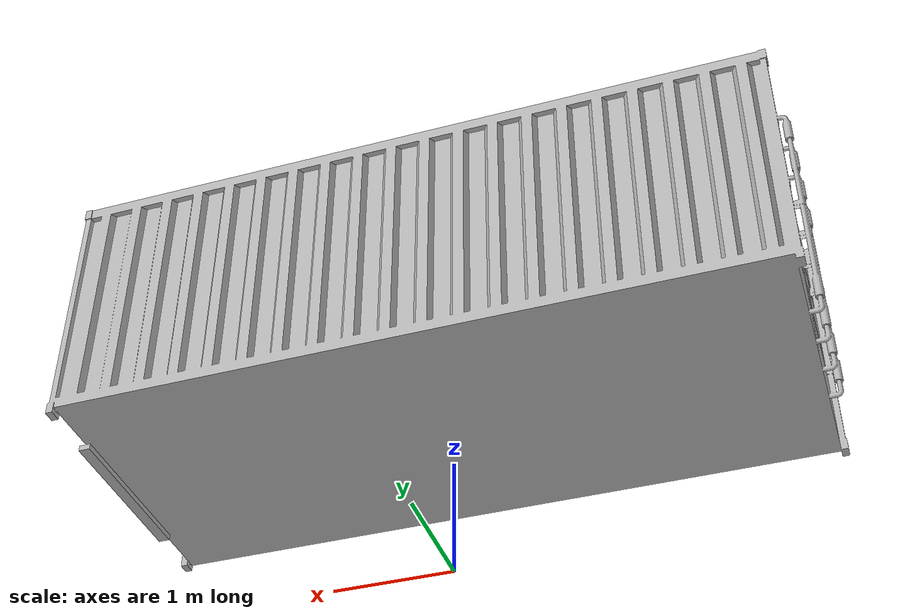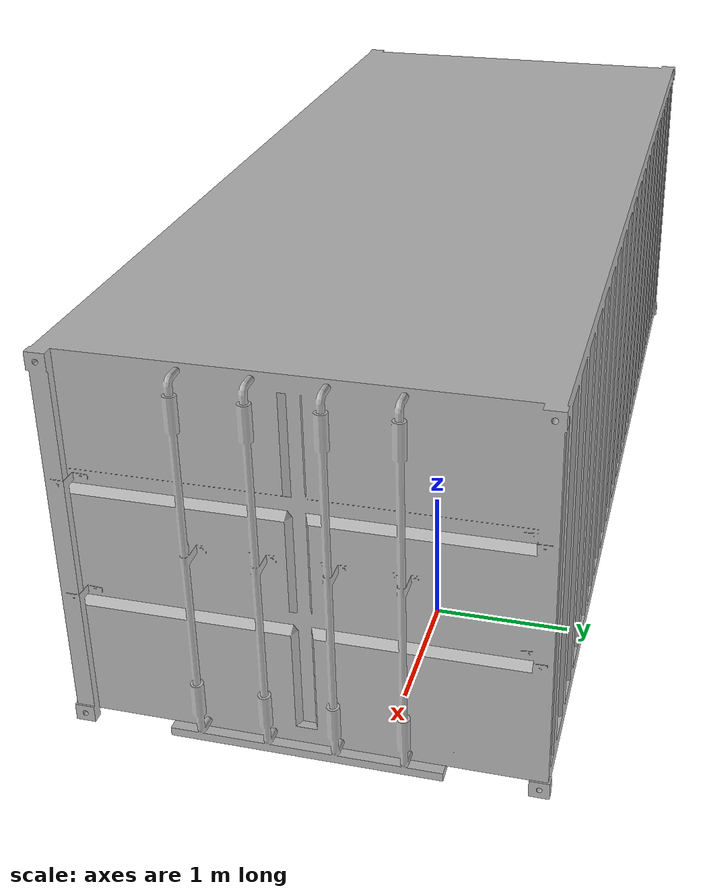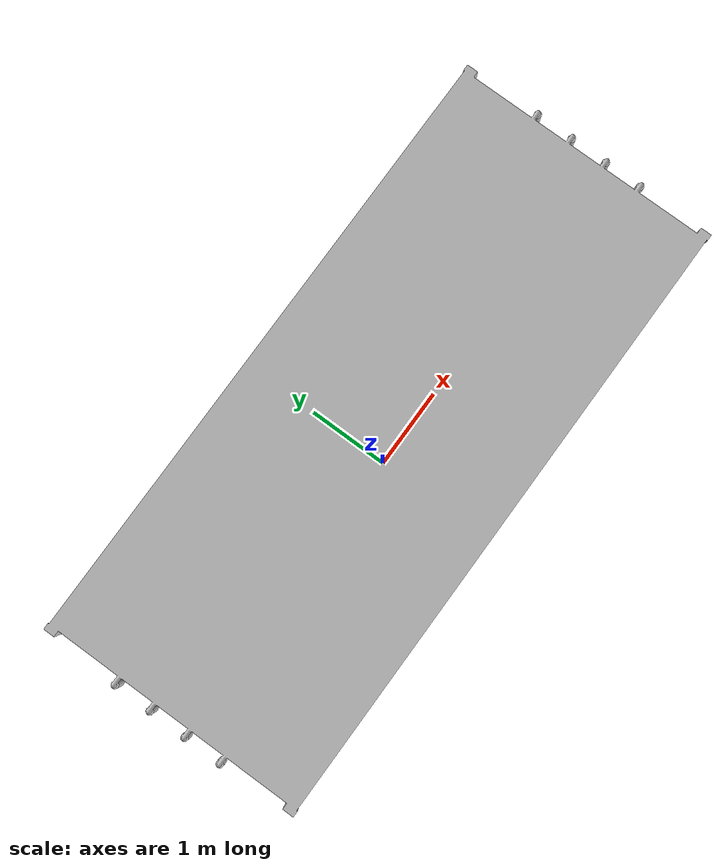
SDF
<sdf version="1.11">
  <model name="container1">
    <static>false</static>

    <link name="base_link">
      <pose>0 0 1.295 0 0 0</pose> <!-- half of height to float above origin -->

      <inertial>
        <mass>2200</mass> <!-- realistic container weight when empty -->
        <inertia>
          <ixx>1000</ixx>
          <iyy>1000</iyy>
          <izz>1000</izz>
          <ixy>0</ixy>
          <ixz>0</ixz>
          <iyz>0</iyz>
        </inertia>
      </inertial>

      <collision name="collision">
        <geometry>
              <mesh>
                <uri>model://newnames/container1/meshes/Cargo_Container_Mesh.dae</uri>
              </mesh>
            </geometry>
            <surface>
              <contact>
                <collide_without_contact>true</collide_without_contact>
              </contact>
            </surface>
      </collision>
        <visual name="visual">
         <geometry>
          <mesh>
            <uri>model://newnames/container1/meshes/Cargo_Container_Mesh.dae</uri>
          </mesh>
        </geometry>

      </visual>
    </link>

    <plugin name="vrx::Surface" filename="libSurface.so">
      <link_name>base_link</link_name>
      <hull_length>6.06</hull_length>
      <hull_radius>0.5</hull_radius>
      <fluid_level>0</fluid_level>
      <points>
        <point>2.9 1.2 0</point>
        <point>-2.9 1.2 0</point>
        <point>2.9 -1.2 0</point>
        <point>-2.9 -1.2 0</point>
      </points>
      <wavefield>
        <topic>/vrx/wavefield/parameters</topic>
      </wavefield>
    </plugin>

    <plugin name="vrx::SimpleHydrodynamics" filename="libSimpleHydrodynamics.so">
      <link_name>base_link</link_name>
      <xDotU>0.0</xDotU>
      <yDotV>0.0</yDotV>
      <nDotR>0.0</nDotR>
      <xU>300.0</xU>
      <xUU>500.0</xUU>
      <yV>300.0</yV>
      <yVV>400.0</yVV>
      <zW>2000.0</zW> <!-- large value to simulate strong vertical resistance (buoyancy) -->
      <kP>1000.0</kP>
      <kPP>1200.0</kPP>
      <mQ>1000.0</mQ>
      <mQQ>1200.0</mQQ>
      <nR>1000.0</nR>
      <nRR>1200.0</nRR>
    </plugin>
    <plugin filename="gz-sim-odometry-publisher-system"
            name="gz::sim::systems::OdometryPublisher">
      <odom_frame>world</odom_frame>
      <robot_base_frame>base_link</robot_base_frame>
      <odom_topic>/model/container1/odometry</odom_topic>
      <odom_covariance_topic>/model/container1/odometry_with_covariance</odom_covariance_topic>
      <tf_topic>/model/container1/pose</tf_topic>
      <odom_publish_frequency>30</odom_publish_frequency>
      <dimensions>3</dimensions>
      <gaussian_noise>0.0</gaussian_noise>
    </plugin>
  </model>
</sdf>
